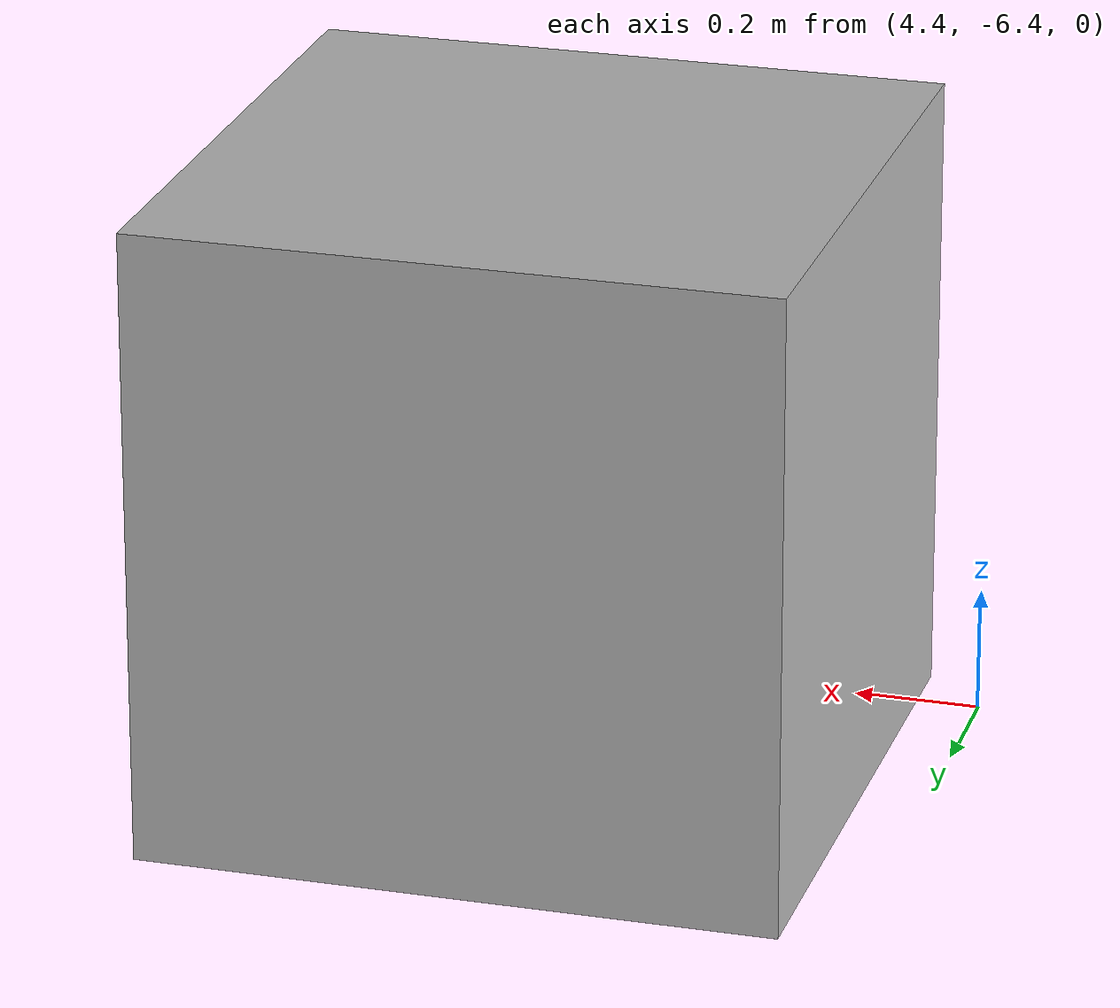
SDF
<?xml version="1.0"?>
<sdf version="1.4">
    <model name="box1">
      <pose>5 -6 0.5 0 0 0</pose>
      <link name="link">
        <collision name="collision">
          <geometry>
            <box>
              <size>1 1 1</size>
            </box>
          </geometry>
        </collision>

        <visual name="visual">
          <geometry>
            <box>
              <size>1 1 1</size>
            </box>
          </geometry>
        </visual>
      </link>

    </model>
</sdf>
